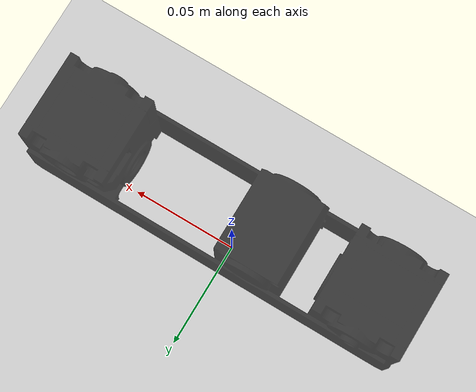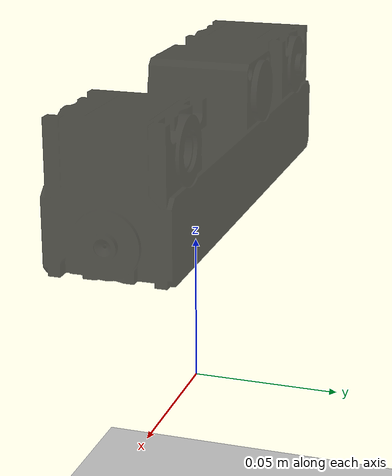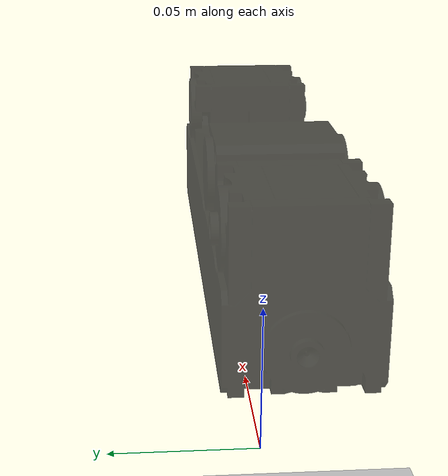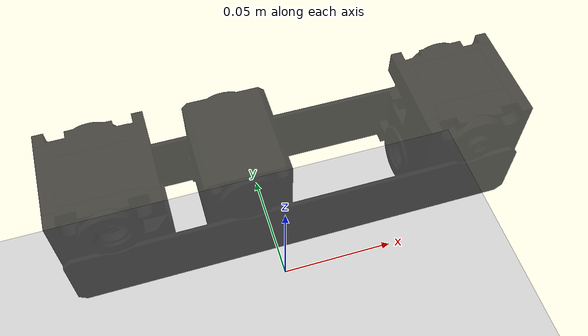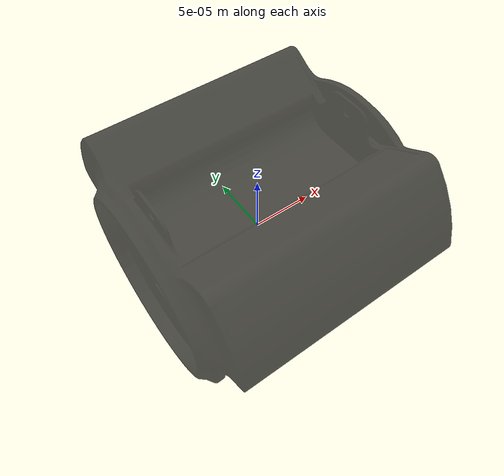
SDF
<?xml version="1.0"?>
<sdf version="1.6">
    <world name="cave_world">
        <physics name="1ms" type="ignored">
            <max_step_size>0.001</max_step_size>
            <real_time_factor>1.0</real_time_factor>
        </physics>
        <plugin filename="libignition-gazebo-physics-system.so" name="ignition::gazebo::systems::Physics"></plugin>
        <plugin filename="libignition-gazebo-user-commands-system.so" name="ignition::gazebo::systems::UserCommands"></plugin>
        <plugin filename="libignition-gazebo-scene-broadcaster-system.so" name="ignition::gazebo::systems::SceneBroadcaster"></plugin>

        <!-- FLOOR -->
        <model name="ground_plane">
            <static>true</static>
            <pose>0 0 -0.115015 0 0 0</pose>
            <link name="link">
                <collision name="collision">
                    <geometry>
                        <plane>
                            <normal>0 0 1</normal>
                        </plane>
                    </geometry>
                </collision>
                <visual name="visual">
                    <geometry>
                        <plane>
                            <normal>0 0 1</normal>
                            <size>100 100</size>
                        </plane>
                    </geometry>
                    <material>
                        <ambient>0.8 0.8 0.8 1</ambient>
                        <diffuse>0.8 0.8 0.8 1</diffuse>
                        <specular>0.8 0.8 0.8 1</specular>
                    </material>
                </visual>
            </link>
        </model>

        <light type="directional" name="sun">
            <cast_shadows>true</cast_shadows>
            <pose>0 0 10 0 0 0</pose>
            <diffuse>0.8 0.8 0.8 1</diffuse>
            <specular>0.2 0.2 0.2 1</specular>
            <attenuation>
                <range>1000</range>
                <constant>0.9</constant>
                <linear>0.01</linear>
                <quadratic>0.001</quadratic>
            </attenuation>
            <direction>-0.5 0.1 -0.9</direction>
        </light>

        <model name="rm2_body">
            <static>false</static>
            <self_collide>true</self_collide>

            <link name='baseLink'>
                <kinematic>0</kinematic>
                <pose>0 0 0 0 0 0</pose>
                <inertial>
                    <mass>5</mass>
                    <inertia>
                        <ixx>2.501</ixx>
                        <ixy>0</ixy>
                        <ixz>0</ixz>
                        <iyy>2.501</iyy>
                        <iyz>0</iyz>
                        <izz>5</izz>
                    </inertia>
                </inertial>
                <collision name='collision'>
                    <geometry>
                        <mesh>
                            <scale> 0.001 0.001 0.001</scale>
                            <uri>model://rm2_body/meshes/body_collision.stl</uri>
                        </mesh>
                    </geometry>
                    <max_contacts>10</max_contacts>
                </collision>
                <visual name='visual'>
                    <transparency>0.3</transparency>
                    <geometry>
                        <mesh>
                            <scale> 0.001 0.001 0.001</scale>
                            <uri>model://rm2_body/meshes/body_structure_blue.stl</uri>
                        </mesh>
                    </geometry>
                    <material>
                        <diffuse>0 0 0 1</diffuse>
                        <ambient>0 0 0 1</ambient>
                        <specular>0 0 0 1</specular>
                        <emissive>0 0 0 1</emissive>
                    </material>
                </visual>
                <self_collide>0</self_collide>
                <enable_wind>0</enable_wind>
            </link>

                    <link name='leg_motors_structureLink'>
                        <pose relative_to="leg_1_body_joint">0 0 0 0 0 0</pose>
                        <inertial>
                            <mass>1</mass>
                            <inertia>
                                <ixx>0.032</ixx>
                                <ixy>0</ixy>
                                <ixz>0</ixz>
                                <iyy>0.032</iyy>
                                <iyz>0</iyz>
                                <izz>0.00012</izz>
                            </inertia>
                        </inertial>
                        <collision name='collision'>
                            <geometry>
                                <box>
                                    <size>1.166 1.040 1.047</size>
                                </box>
                            </geometry>
                        </collision>
                        <visual name='visual'>
                            <transparency>0.3</transparency>
                            <geometry>
                                <mesh>
                                    <scale> 0.001 0.001 0.001</scale>
                                    <uri>model://rm2_leg/meshes/leg_motors_simple.stl</uri>
                                </mesh>
                            </geometry>
                            <material>
                                <diffuse>0 0 0 0.7</diffuse>
                                <ambient>0 0 0 0.7</ambient>
                                <specular>0 0 0 0.7</specular>
                                <emissive>0 0 0 0.7</emissive>
                            </material>
                        </visual>
                        <self_collide>0</self_collide>
                        <enable_wind>0</enable_wind>
                    </link>

                    <joint name="leg_1_body_joint" type="revolute">
                        <pose relative_to="baseLink">
                  -0.004511 0.000021 0.086269 0 0 0
                  </pose>

                        <parent>baseLink</parent>
                        <child>leg_motors_structureLink</child>
                        <axis>
                            <xyz>1 0 0</xyz>
                        </axis>
                    </joint>

                    <plugin filename="ignition-gazebo-joint-position-controller-system" name="ignition::gazebo::systems::JointPositionController">
                        <joint_name>leg_1_body_joint</joint_name>
                        <topic>cmd_joint</topic>
                    </plugin>

        </model>

    </world>
</sdf>
